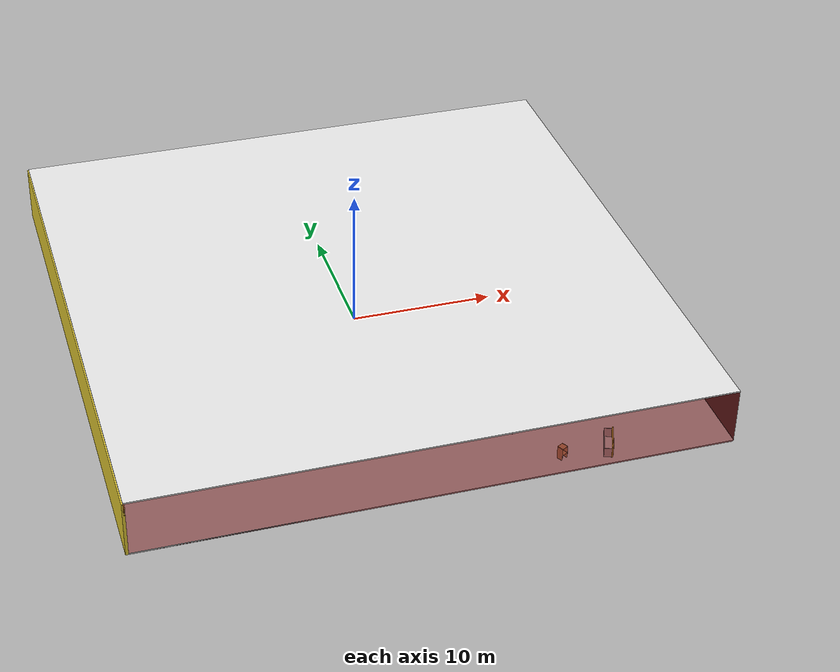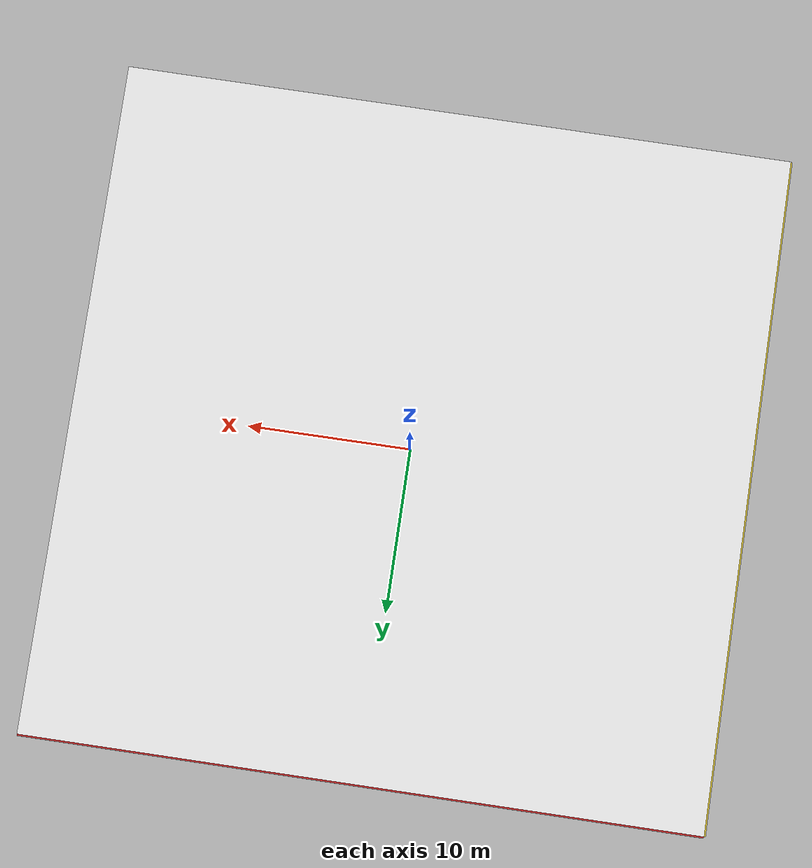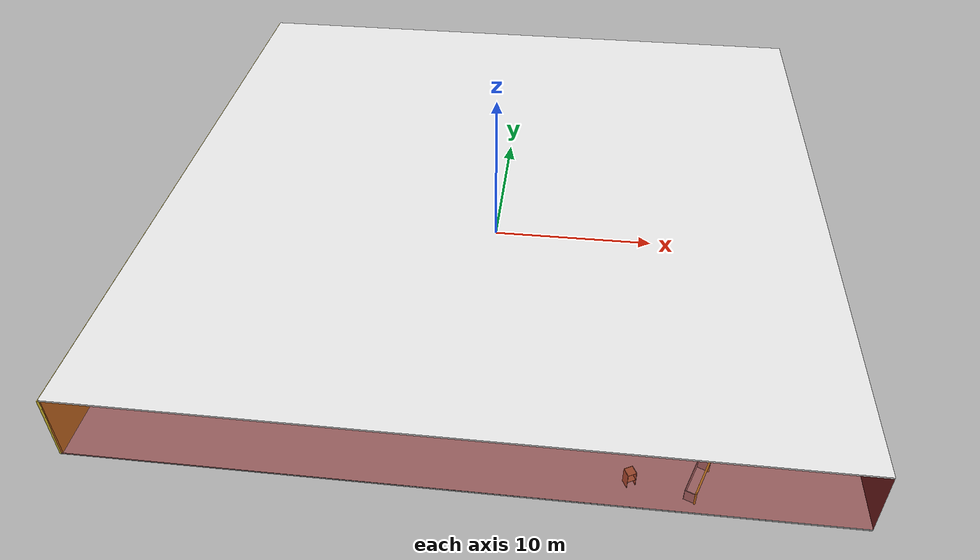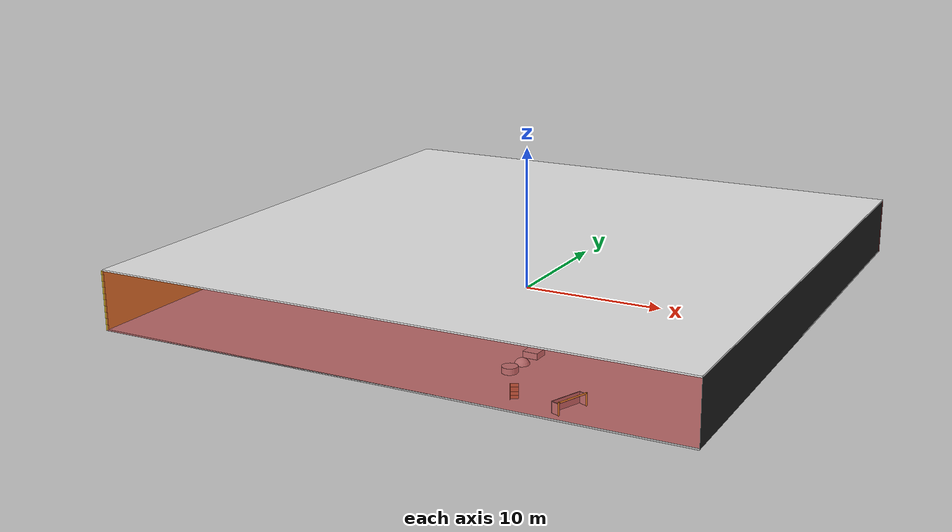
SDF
<sdf version="1.4">
 <world name="default">
  <physics type="ode">
   <max_step_size>0.001</max_step_size>
   <real_time_factor>1</real_time_factor>
   <real_time_update_rate>1000</real_time_update_rate>
   <gravity>0 0 -9.8</gravity>
  </physics>
  <scene><ambient>0.4 0.4 0.4 1</ambient><background>0.7 0.7 0.7 1</background><shadows>1</shadows></scene>
  <model name="Surrounding">
   <static>1</static>
   <link name="Ceiling">
    <collision name="Ceiling_Collision"><geometry><box><size>40 40 0.1</size></box></geometry></collision>
    <visual name="Ceiling_Visual">
     <geometry><box><size>40 40 0.1</size></box></geometry>
     <material>
      <script><uri>file://media/materials/scripts/gazebo.material</uri><name>Gazebo/White</name></script>
     </material>
    </visual>
    <pose>0 0 4.05 0 0 0</pose>
   </link>
   <link name="Wall_South">
    <collision name="Wall_South_Collision">
     <geometry><box><size>40 0 4</size></box></geometry>
     <pose>0 0 2 0 -0 0</pose>
    </collision>
    <visual name="Wall_South_Visual">
     <pose>0 0 2 0 -0 0</pose>
     <geometry><box><size>40 0 4</size></box></geometry>
     <material>
      <script><uri>file://media/materials/scripts/gazebo.material</uri><name>Gazebo/RedTransparent</name></script>
     </material>
    </visual>
    <velocity_decay><linear>0</linear><angular>0</angular></velocity_decay>
    <pose>0 -20 0 0 -0 0</pose>
   </link>
   <link name="Wall_East">
    <collision name="Wall_21_Collision">
     <geometry><box><size>40 0 4</size></box></geometry>
     <pose>0 0 2 0 -0 0</pose>
    </collision>
    <visual name="Wall_21_Visual">
     <pose>0 0 2 0 -0 0</pose>
     <geometry><box><size>40 0 4</size></box></geometry>
     <material>
      <script><uri>file://media/materials/scripts/gazebo.material</uri><name>Gazebo/FlatBlack</name></script>
     </material>
    </visual>
    <velocity_decay><linear>0</linear><angular>0</angular></velocity_decay>
    <pose>20 0 0 0 -0 1.5708</pose>
   </link>
   <link name="Wall_North">
    <collision name="Wall_22_Collision">
     <geometry><box><size>40 0.2 4</size></box></geometry>
     <pose>0 0 2 0 -0 0</pose>
    </collision>
    <visual name="Wall_22_Visual">
     <pose>0 0 2 0 -0 0</pose>
     <geometry><box><size>40 0.2 4</size></box></geometry>
     <material>
      <script><uri>file://media/materials/scripts/gazebo.material</uri><name>Gazebo/Red</name></script>
     </material>
    </visual>
    <velocity_decay><linear>0</linear><angular>0</angular></velocity_decay>
    <pose>0 20 0 0 -0 0</pose>
   </link>
   <link name="Wall_West">
    <collision name="Wall_23_Collision">
     <geometry><box><size>40 0.2 4</size></box></geometry>
     <pose>0 0 2 0 -0 0</pose>
    </collision>
    <visual name="Wall_23_Visual">
     <pose>0 0 2 0 -0 0</pose>
     <geometry><box><size>40 0.2 4</size></box></geometry>
     <material>
      <script><uri>file://media/materials/scripts/gazebo.material</uri><name>Gazebo/ZincYellow</name></script>
     </material>
    </visual>
    <velocity_decay><linear>0</linear><angular>0</angular></velocity_decay>
    <pose>-20 0 0 0 0 -1.5708</pose>
   </link>
   <link name="Ground_link">
    <collision name="collision">
     <pose>0 0 .05 0 -0 0</pose>
     <geometry><box><size>40 40 0.1</size></box></geometry>
    </collision>
    <visual name="visual">
     <pose>0 0 .05 0 -0 0</pose>
     <geometry><box><size>40 40 0.1</size></box></geometry>
     <material>
      <script><uri>file://media/materials/scripts/gazebo.material</uri><name>Gazebo/JointAnchor</name></script>
     </material>
    </visual>
   </link>
   <static>1</static>
  </model>
  <spherical_coordinates>
   <surface_model>EARTH_WGS84</surface_model>
   <latitude_deg>0</latitude_deg>
   <longitude_deg>0</longitude_deg>
   <elevation>0</elevation>
   <heading_deg>0</heading_deg>
  </spherical_coordinates>
  <light name="lightball_0" type="diffuse">
   <diffuse>0.8 0.8 0.8 1</diffuse>
   <specular>0.2 0.2 0.2 1</specular>
   <attenuation>
    <range>100</range>
    <constant>0.7</constant>
    <linear>0.01</linear>
    <quadratic>0.001</quadratic>
   </attenuation>
   <direction>-0.5 0.1 -0.9</direction>
   <pose>-0.336554169472 2.3924617114 2.7738293416 0 0 0</pose>
  </light>
  <light name="lightball_1" type="diffuse">
   <diffuse>0.8 0.8 0.8 1</diffuse>
   <specular>0.2 0.2 0.2 1</specular>
   <attenuation>
    <range>100</range>
    <constant>0.7</constant>
    <linear>0.01</linear>
    <quadratic>0.001</quadratic>
   </attenuation>
   <direction>-0.5 0.1 -0.9</direction>
   <pose>-11.6168624675 2.56167145475 2.69800575085 0 0 0</pose>
  </light>
  <light name="lightball_2" type="diffuse">
   <diffuse>0.8 0.8 0.8 1</diffuse>
   <specular>0.2 0.2 0.2 1</specular>
   <attenuation>
    <range>100</range>
    <constant>0.7</constant>
    <linear>0.01</linear>
    <quadratic>0.001</quadratic>
   </attenuation>
   <direction>-0.5 0.1 -0.9</direction>
   <pose>13.7160828152 -15.8688805624 1.68781659239 0 0 0</pose>
  </light>
  <include>
   <uri>model://construction_cone</uri>
   <pose>-17.7024137756 -6.31365285566 0 0 0 2.25525694495</pose>
  </include>
  <include><uri>model://cabinet</uri><pose>-16.9393851206 17.4608148157 0 0 0 1.35247403437</pose></include>
  <include><uri>model://cabinet</uri><pose>-15.1110959294 4.33947502429 0 0 0 1.16735397255</pose></include>
  <include><uri>model://cabinet</uri><pose>-14.5200469126 15.9965132331 0 0 0 1.70788335938</pose></include>
  <include><uri>model://cabinet</uri><pose>-11.94219809 -0.244879413083 0 0 0 1.07047825854</pose></include>
  <include><uri>model://table</uri><pose>-9.62318701108 10.3287665836 0 0 0 1.70696858734</pose></include>
  <include><uri>model://table</uri><pose>-5.74145476163 3.72139929745 0 0 0 2.16880625006</pose></include>
  <include>
   <uri>model://textured_shapes</uri>
   <pose>-1.50149969459 -6.06854544155 0 0 0 1.20120439329</pose>
  </include>
  <include><uri>model://cabinet</uri><pose>-2.07316730591 7.38023886582 0 0 0 0.209677014207</pose></include>
  <include>
   <uri>model://robocup_3Dsim_goal</uri>
   <pose>-3.19871296582 16.2080791145 0 0 0 2.05508878439</pose>
  </include>
  <include><uri>model://table</uri><pose>-2.01056386614 18.7929509922 0 0 0 2.76721902569</pose></include>
  <include>
   <uri>model://construction_cone</uri>
   <pose>0.0424772879157 -0.279228744074 0 0 0 0.61390937622</pose>
  </include>
  <include><uri>model://cabinet</uri><pose>0.966408934888 3.30137203735 0 0 0 0.331343131897</pose></include>
  <include>
   <uri>model://construction_cone</uri>
   <pose>0.305537334413 7.61848806052 0 0 0 1.94240647459</pose>
  </include>
  <include>
   <uri>model://robocup_3Dsim_goal</uri>
   <pose>0.0264735602667 10.4153209425 0 0 0 1.02211099872</pose>
  </include>
  <include>
   <uri>model://textured_shapes</uri>
   <pose>3.29820669939 -0.286135895441 0 0 0 1.70327329099</pose>
  </include>
  <include>
   <uri>model://construction_cone</uri>
   <pose>2.38764306532 6.61267261385 0 0 0 0.31841236067</pose>
  </include>
  <include>
   <uri>model://construction_cone</uri>
   <pose>4.50094426796 10.0609884658 0 0 0 1.61070041753</pose>
  </include>
  <include>
   <uri>model://construction_cone</uri>
   <pose>3.97001549401 13.0795476903 0 0 0 0.176986033002</pose>
  </include>
  <include>
   <uri>model://textured_shapes</uri>
   <pose>6.45239904384 -13.4929880771 0 0 0 3.11735806155</pose>
  </include>
  <include><uri>model://cabinet</uri><pose>8.59468252057 -18.6380900102 0 0 0 2.0453131638</pose></include>
  <include>
   <uri>model://robocup_3Dsim_goal</uri>
   <pose>12.1158632274 -18.5012965334 0 0 0 2.76122898064</pose>
  </include>
  <include>
   <uri>model://textured_shapes</uri>
   <pose>13.1165226836 0.94141230417 0 0 0 2.74075052356</pose>
  </include>
  <include>
   <uri>model://robocup_3Dsim_goal</uri>
   <pose>14.5809493468 -4.38407589554 0 0 0 1.82113240223</pose>
  </include>
  <include><uri>model://table</uri><pose>15.8434547471 18.116366805 0 0 0 1.93205960294</pose></include>
  <include><uri>model://cabinet</uri><pose>18.0580095193 2.33794367795 0 0 0 2.51744226875</pose></include>
 </world>
</sdf>

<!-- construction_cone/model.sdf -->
<sdf version="1.5">
  <model name="Construction Cone">
    <link name="link">
      <collision name="collision">
        <geometry>
          <mesh>
            <scale>10 10 10</scale>
            <uri>file://isr-testbed/construction_cone/meshes/construction_cone.dae</uri>
          </mesh>
        </geometry>
      </collision>
      <visual name="visual">
        <geometry>
          <mesh>
            <scale>10 10 10</scale>
            <uri>file://isr-testbed/construction_cone/meshes/construction_cone.dae</uri>
          </mesh>
        </geometry>
      </visual>
    </link>
  </model>
</sdf>

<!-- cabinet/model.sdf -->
<sdf version="1.5">
  <model name="cabinet">
    <static>true</static>
    <link name="cabinet_bottom_plate">
      <inertial>
        <pose>0 0 -1 0 0 0</pose>
        <inertia>
          <ixx>2.050000</ixx>
          <ixy>0</ixy>
          <ixz>0</ixz>
          <iyy>2.050000</iyy>
          <iyz>0</iyz>
          <izz>2.050000</izz>
        </inertia>
        <mass>25.000000</mass>
      </inertial>
      <collision name="cabinet_bottom_plate_geom">
        <pose>0 0 0.010000 0 0 0</pose>
        <geometry>
          <box>
            <size>0.450000 0.450000 0.020000</size>
          </box>
        </geometry>
      </collision>
      <visual name="cabinet_bottom_plate_geom_visual">
        <pose>0 0 0.010000 0 0 0</pose>
        <geometry>
          <box>
            <size>0.450000 0.450000 0.020000</size>
          </box>
        </geometry>
        <material>
          <script>
            <uri>model://media/materials/scripts/gazebo.material</uri>
            <name>Gazebo/Wood</name>
          </script>
        </material>
      </visual>
      <collision name="cabinet_bottom_plate_geom_cabinet_back_plate">
        <pose>0.235000 0 0.510000 0 0 0</pose>
        <geometry>
          <box>
            <size>0.020000 0.450000 1.020000</size>
          </box>
        </geometry>
      </collision>
      <visual name="cabinet_bottom_plate_geom_cabinet_back_plate_visual">
        <pose>0.235000 0 0.510000 0 0 0</pose>
        <geometry>
          <box>
            <size>0.020000 0.450000 1.020000</size>
          </box>
        </geometry>
        <material>
          <script>
            <uri>model://media/materials/scripts/gazebo.material</uri>
            <name>Gazebo/Wood</name>
          </script>
        </material>
      </visual>
      <collision name="cabinet_bottom_plate_geom_cabinet_left_plate">
        <pose>0 0.235000 0.510000 0 0 0</pose>
        <geometry>
          <box>
            <size>0.450000 0.020000 1.020000</size>
          </box>
        </geometry>
      </collision>
      <visual name="cabinet_bottom_plate_geom_cabinet_left_plate_visual">
        <pose>0 0.235000 0.510000 0 0 0</pose>
        <geometry>
          <box>
            <size>0.450000 0.020000 1.020000</size>
          </box>
        </geometry>
        <material>
          <script>
            <uri>model://media/materials/scripts/gazebo.material</uri>
            <name>Gazebo/Wood</name>
          </script>
        </material>
      </visual>
      <collision name="cabinet_bottom_plate_geom_cabinet_middle_plate">
        <pose>0 0 0.510000 0 0 0</pose>
        <geometry>
          <box>
            <size>0.450000 0.450000 0.020000</size>
          </box>
        </geometry>
      </collision>
      <visual name="cabinet_bottom_plate_geom_cabinet_middle_plate_visual">
        <pose>0 0 0.510000 0 0 0</pose>
        <geometry>
          <box>
            <size>0.450000 0.450000 0.020000</size>
          </box>
        </geometry>
        <material>
          <script>
            <uri>model://media/materials/scripts/gazebo.material</uri>
            <name>Gazebo/Wood</name>
          </script>
        </material>
      </visual>
      <collision name="cabinet_bottom_plate_geom_cabinet_right_plate">
        <pose>0 -0.235000 0.510000 0 0 0</pose>
        <geometry>
          <box>
            <size>0.450000 0.020000 1.020000</size>
          </box>
        </geometry>
      </collision>
      <visual name="cabinet_bottom_plate_geom_cabinet_right_plate_visual">
        <pose>0 -0.235000 0.510000 0 0 0</pose>
        <geometry>
          <box>
            <size>0.450000 0.020000 1.020000</size>
          </box>
        </geometry>
        <material>
          <script>
            <uri>model://media/materials/scripts/gazebo.material</uri>
            <name>Gazebo/Wood</name>
          </script>
        </material>
      </visual>
      <collision name="cabinet_bottom_plate_geom_cabinet_top_plate">
        <pose>0 0 1.010000 0 0 0</pose>
        <geometry>
          <box>
            <size>0.450000 0.450000 0.020000</size>
          </box>
        </geometry>
      </collision>
      <visual name="cabinet_bottom_plate_geom_cabinet_top_plate_visual">
        <pose>0 0 1.010000 0 0 0</pose>
        <geometry>
          <box>
            <size>0.450000 0.450000 0.020000</size>
          </box>
        </geometry>
        <material>
          <script>
            <uri>model://media/materials/scripts/gazebo.material</uri>
            <name>Gazebo/Wood</name>
          </script>
        </material>
      </visual>
    </link>
  </model>
</sdf>

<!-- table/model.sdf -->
<sdf version="1.5">
  <model name="table">
    <static>true</static>
    <link name="link">
      <collision name="surface">
        <pose>0 0 1.0 0 0 0</pose>
        <geometry>
          <box>
            <size>1.5 0.8 0.03</size>
          </box>
        </geometry>
        <surface>
          <friction>
            <ode>
              <mu>0.6</mu>
              <mu2>0.6</mu2>
            </ode>
          </friction>
        </surface>
      </collision>
      <visual name="visual1">
        <pose>0 0 1.0 0 0 0</pose>
        <geometry>
          <box>
            <size>1.5 0.8 0.03</size>
          </box>
        </geometry>
        <material>
          <script>
            <uri>model://media/materials/scripts/gazebo.material</uri>
            <name>Gazebo/Wood</name>
          </script>
        </material>
      </visual>
      <collision name="front_left_leg">
        <pose>0.68 0.38 0.5 0 0 0</pose>
        <geometry>
          <cylinder>
            <radius>0.02</radius>
            <length>1.0</length>
          </cylinder>
        </geometry>
      </collision>
      <visual name="front_left_leg">
        <pose>0.68 0.38 0.5 0 0 0</pose>
        <geometry>
          <cylinder>
            <radius>0.02</radius>
            <length>1.0</length>
          </cylinder>
        </geometry>
        <material>
          <script>
            <uri>model://media/materials/scripts/gazebo.material</uri>
            <name>Gazebo/Grey</name>
          </script>
        </material>
      </visual>
      <collision name="front_right_leg">
        <pose>0.68 -0.38 0.5 0 0 0</pose>
        <geometry>
          <cylinder>
            <radius>0.02</radius>
            <length>1.0</length>
          </cylinder>
        </geometry>
      </collision>
      <visual name="front_right_leg">
        <pose>0.68 -0.38 0.5 0 0 0</pose>
        <geometry>
          <cylinder>
            <radius>0.02</radius>
            <length>1.0</length>
          </cylinder>
        </geometry>
        <material>
          <script>
            <uri>model://media/materials/scripts/gazebo.material</uri>
            <name>Gazebo/Grey</name>
          </script>
        </material>
      </visual>
      <collision name="back_right_leg">
        <pose>-0.68 -0.38 0.5 0 0 0</pose>
        <geometry>
          <cylinder>
            <radius>0.02</radius>
            <length>1.0</length>
          </cylinder>
        </geometry>
      </collision>
      <visual name="back_right_leg">
        <pose>-0.68 -0.38 0.5 0 0 0</pose>
        <geometry>
          <cylinder>
            <radius>0.02</radius>
            <length>1.0</length>
          </cylinder>
        </geometry>
        <material>
          <script>
            <uri>model://media/materials/scripts/gazebo.material</uri>
            <name>Gazebo/Grey</name>
          </script>
        </material>
      </visual>
      <collision name="back_left_leg">
        <pose>-0.68 0.38 0.5 0 0 0</pose>
        <geometry>
          <cylinder>
            <radius>0.02</radius>
            <length>1.0</length>
          </cylinder>
        </geometry>
      </collision>
      <visual name="back_left_leg">
        <pose>-0.68 0.38 0.5 0 0 0</pose>
        <geometry>
          <cylinder>
            <radius>0.02</radius>
            <length>1.0</length>
          </cylinder>
        </geometry>
        <material>
          <script>
            <uri>model://media/materials/scripts/gazebo.material</uri>
            <name>Gazebo/Grey</name>
          </script>
        </material>
      </visual>
    </link>
  </model>
</sdf>

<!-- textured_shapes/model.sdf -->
<sdf version="1.6">
  <model name="textured_shapes">
    <pose>0 0 0.5 0 0 0</pose>
    <link name="box">
      <pose>0 -1.5 0 0 0 0</pose>
      <collision name="collision">
        <geometry>
          <box>
            <size>1 1 1</size>
          </box>
        </geometry>
      </collision>
      <visual name="visual">
        <geometry>
          <box>
            <size>1 1 1</size>
          </box>
        </geometry>
        <material>
          <script>
            <uri>model://../model_source/models/textured_shapes/materials/scripts</uri>
            <uri>model://../model_source/models/textured_shapes/materials/textures</uri>
            <name>TexturedShape/Squares</name>
          </script>
        </material>
      </visual>
    </link>
    <link name="sphere">
      <collision name="collision">
        <geometry>
          <sphere>
            <radius>0.5</radius>
          </sphere>
        </geometry>
      </collision>
      <visual name="visual">
        <geometry>
          <sphere>
            <radius>0.5</radius>
          </sphere>
        </geometry>
        <material>
          <script>
            <uri>model://../model_source/models/textured_shapes/materials/scripts</uri>
            <uri>model://../model_source/models/textured_shapes/materials/textures</uri>
            <name>TexturedShape/Squares</name>
          </script>
        </material>
      </visual>
    </link>
    <link name="cylinder">
      <pose>0 1.5 0 0 0 0</pose>
      <collision name="collision">
        <geometry>
          <cylinder>
            <radius>0.5</radius>
            <length>1</length>
          </cylinder>
        </geometry>
      </collision>
      <visual name="visual">
        <geometry>
          <cylinder>
            <radius>0.5</radius>
            <length>1</length>
          </cylinder>
        </geometry>
        <material>
          <script>
            <uri>model://../model_source/models/textured_shapes/materials/scripts</uri>
            <uri>model://../model_source/models/textured_shapes/materials/textures</uri>
            <name>TexturedShape/Squares</name>
          </script>
        </material>
      </visual>
    </link>
  </model>
</sdf>

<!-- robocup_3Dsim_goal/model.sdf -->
<sdf version="1.5">
  <model name="robocup_3d_goal">
    <static>true</static>
    <link name="left_post">
      <pose>0 1.05 0.45 0 0 0</pose>
      <collision name="collision">
        <geometry>
          <cylinder>
            <radius>0.05</radius>
            <length>0.9</length>
          </cylinder>
        </geometry>
      </collision>
      <visual name="visual">
        <geometry>
          <cylinder>
            <radius>0.05</radius>
            <length>0.9</length>
          </cylinder>
        </geometry>
        <material>
          <script>
            <uri>file://media/materials/scripts/gazebo.material</uri>
            <name>Gazebo/ZincYellow</name>
          </script>
        </material>
      </visual>
    </link>
    <link name="left_support_horiz_lower">
      <pose>0.30 1.05 0.01 0 0 0</pose>
      <collision name="collision">
        <geometry>
          <box>
            <size>0.50 0.02 0.02</size>
          </box>
        </geometry>
      </collision>
      <visual name="visual">
        <geometry>
          <box>
            <size>0.50 0.02 0.02</size>
          </box>
        </geometry>
        <material>
          <script>
            <uri>file://media/materials/scripts/gazebo.material</uri>
            <name>Gazebo/White</name>
          </script>
        </material>
      </visual>
    </link>
    <link name="left_support_horiz_upper">
      <pose>0.30 1.05 0.79 0 0 0</pose>
      <collision name="collision">
        <geometry>
          <box>
            <size>0.50 0.02 0.02</size>
          </box>
        </geometry>
      </collision>
      <visual name="visual">
        <geometry>
          <box>
            <size>0.50 0.02 0.02</size>
          </box>
        </geometry>
        <material>
          <script>
            <uri>file://media/materials/scripts/gazebo.material</uri>
            <name>Gazebo/White</name>
          </script>
        </material>
      </visual>
    </link>
    <link name="left_support_vertical">
      <pose>0.56 1.05 0.4 0 1.5708 0</pose>
      <collision name="collision">
        <geometry>
          <box>
            <size>0.80 0.02 0.02</size>
          </box>
        </geometry>
      </collision>
      <visual name="visual">
        <geometry>
          <box>
            <size>0.80 0.02 0.02</size>
          </box>
        </geometry>
        <material>
          <script>
            <uri>file://media/materials/scripts/gazebo.material</uri>
            <name>Gazebo/White</name>
          </script>
        </material>
      </visual>
    </link>
    <link name="right_support_horiz_lower">
      <pose>0.30 -1.05 0.01 0 0 0</pose>
      <collision name="collision">
        <geometry>
          <box>
            <size>0.50 0.02 0.02</size>
          </box>
        </geometry>
      </collision>
      <visual name="visual">
        <geometry>
          <box>
            <size>0.50 0.02 0.02</size>
          </box>
        </geometry>
        <material>
          <script>
            <uri>file://media/materials/scripts/gazebo.material</uri>
            <name>Gazebo/White</name>
          </script>
        </material>
      </visual>
    </link>
    <link name="right_support_horiz_upper">
      <pose>0.30 -1.05 0.79 0 0 0</pose>
      <collision name="collision">
        <geometry>
          <box>
            <size>0.50 0.02 0.02</size>
          </box>
        </geometry>
      </collision>
      <visual name="visual">
        <geometry>
          <box>
            <size>0.50 0.02 0.02</size>
          </box>
        </geometry>
        <material>
          <script>
            <uri>file://media/materials/scripts/gazebo.material</uri>
            <name>Gazebo/White</name>
          </script>
        </material>
      </visual>
    </link>
    <link name="right_support_vertical">
      <pose>0.56 -1.05 0.4 0 1.5708 0</pose>
      <collision name="collision">
        <geometry>
          <box>
            <size>0.80 0.02 0.02</size>
          </box>
        </geometry>
      </collision>
      <visual name="visual">
        <geometry>
          <box>
            <size>0.80 0.02 0.02</size>
          </box>
        </geometry>
        <material>
          <script>
            <uri>file://media/materials/scripts/gazebo.material</uri>
            <name>Gazebo/White</name>
          </script>
        </material>
      </visual>
    </link>
    <link name="center_support_horiz_lower">
      <pose>0.56 0 0.01 0 1.5708 0</pose>
      <collision name="collision">
        <geometry>
          <box>
            <size>0.02 2.08 0.02</size>
          </box>
        </geometry>
      </collision>
      <visual name="visual">
        <geometry>
          <box>
            <size>0.02 2.08 0.02</size>
          </box>
        </geometry>
        <material>
          <script>
            <uri>file://media/materials/scripts/gazebo.material</uri>
            <name>Gazebo/White</name>
          </script>
        </material>
      </visual>
    </link>
    <link name="center_support_horiz_upper">
      <pose>0.56 0 0.79 0 1.5708 0</pose>
      <collision name="collision">
        <geometry>
          <box>
            <size>0.02 2.08 0.02</size>
          </box>
        </geometry>
      </collision>
      <visual name="visual">
        <geometry>
          <box>
            <size>0.02 2.08 0.02</size>
          </box>
        </geometry>
        <material>
          <script>
            <uri>file://media/materials/scripts/gazebo.material</uri>
            <name>Gazebo/White</name>
          </script>
        </material>
      </visual>
    </link>
    <link name="right_post">
      <pose>0 -1.05 0.45 0 0 0</pose>
      <collision name="collision">
        <geometry>
          <cylinder>
            <radius>0.05</radius>
            <length>0.9</length>
          </cylinder>
        </geometry>
      </collision>
      <visual name="visual">
        <geometry>
          <cylinder>
            <radius>0.05</radius>
            <length>0.9</length>
          </cylinder>
        </geometry>
        <material>
          <script>
            <uri>file://media/materials/scripts/gazebo.material</uri>
            <name>Gazebo/ZincYellow</name>
          </script>
        </material>
      </visual>
    </link>
    <link name="crossbar">
      <pose>0 0 0.85 1.57 1.57 0</pose>
      <collision name="collision">
        <geometry>
          <cylinder>
            <radius>0.05</radius>
            <length>2.0</length>
          </cylinder>
        </geometry>
      </collision>
      <visual name="visual">
        <geometry>
          <cylinder>
            <radius>0.05</radius>
            <length>2.0</length>
          </cylinder>
        </geometry>
        <material>
          <script>
            <uri>file://media/materials/scripts/gazebo.material</uri>
            <name>Gazebo/ZincYellow</name>
          </script>
        </material>
      </visual>
    </link>
    <link name="center_net">
      <pose>0.56 0 0.40 0 0 0</pose>
      <collision name="collision">
        <geometry>
          <box>
            <size>0.01 2.1 0.80</size>
          </box>
        </geometry>
      </collision>
      <visual name="visual">
        <geometry>
          <box>
            <size>0.01 2.1 0.80</size>
          </box>
        </geometry>
        <material>
          <script>
            <uri>model://../model_source/models/robocup09_spl_field/materials/scripts/</uri>
            <uri>model://../model_source/models/robocup09_spl_field/materials/textures/</uri>
            <name>RoboCup/Net</name>
          </script>
        </material>
      </visual>
    </link>
    <link name="left_net">
      <pose>0.30 1.05 0.40 0 0 0</pose>
      <collision name="collision">
        <geometry>
          <box>
            <size>0.50 0.01 0.76</size>
          </box>
        </geometry>
      </collision>
      <visual name="visual">
        <geometry>
          <box>
            <size>0.50 0.01 0.76</size>
          </box>
        </geometry>
        <material>
          <script>
            <uri>model://../model_source/models/robocup09_spl_field/materials/scripts/</uri>
            <uri>model://../model_source/models/robocup09_spl_field/materials/textures/</uri>
            <name>RoboCup/Net</name>
          </script>
        </material>
      </visual>
    </link>
    <link name="right_net">
      <pose>0.30 -1.05 0.40 0 0 0</pose>
      <collision name="collision">
        <geometry>
          <box>
            <size>0.50 0.01 0.76</size>
          </box>
        </geometry>
      </collision>
      <visual name="visual">
        <geometry>
          <box>
            <size>0.50 0.01 0.76</size>
          </box>
        </geometry>
        <material>
          <script>
            <uri>model://../model_source/models/robocup09_spl_field/materials/scripts/</uri>
            <uri>model://../model_source/models/robocup09_spl_field/materials/textures/</uri>
            <name>RoboCup/Net</name>
          </script>
        </material>
      </visual>
    </link>
  </model>
</sdf>
